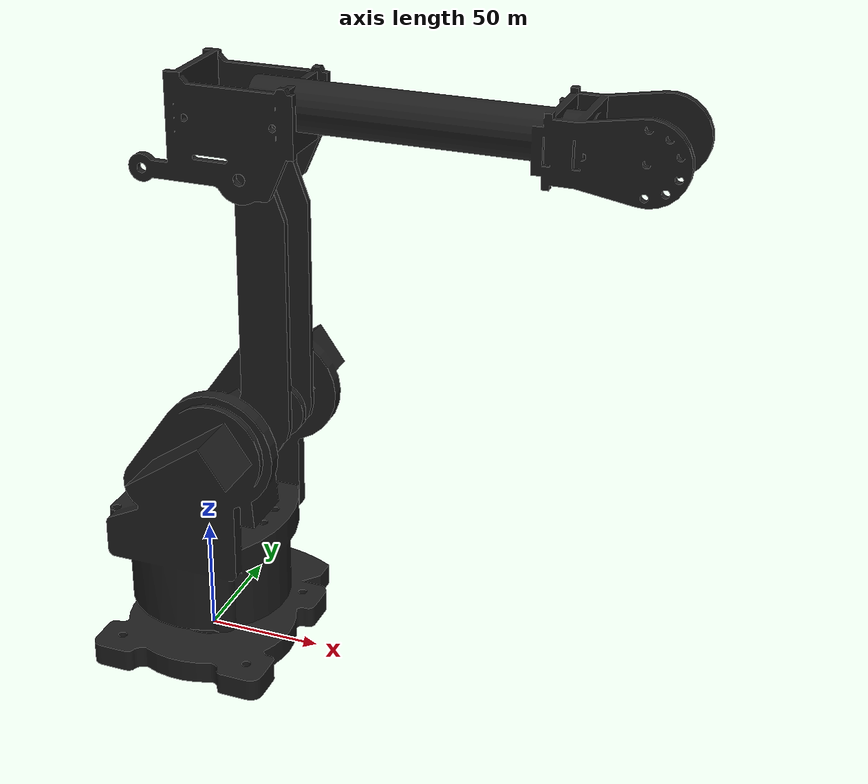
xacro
<?xml version="1.0"?>
<!--INCLUDES-->
<robot name="myrobot" xmlns:xacro="http://www.ros.org/wiki/xacro">
<xacro:include filename="$(find sainsmart_robot_description_pkg)/urdf/links_joints.xacro" />
<!--FIN DE INCLUDES-->

        <m_link_mesh name="base_link"
              origin_rpy="0 0 0" origin_xyz="0 0 0"
              mass="1000"
              ixx="0" ixy="0" ixz="0"
              iyy="0" iyz="0"
              izz="9.655"
              meshfile="package://sainsmart_robot_description_pkg/meshes/baserobot.dae"
              meshscale="1 1 1" />

        <m_joint name="base_link_link01" type="revolute"
           axis_xyz="0 0 1"
           origin_rpy="0 0 0" origin_xyz="0 0 0"
           parent="base_link" child="link_01"
           limit_e="1000" limit_l="-3.14" limit_u="3.14" limit_v="0.5" />

	<transmission name="trans_base_link_link01">
          <type>transmission_interface/SimpleTransmission</type>
      	  <joint name="base_link_link01">
             <hardwareInterface>PositionJointInterface</hardwareInterface>
      	  </joint>
          <actuator name="motor_base_link_link01">
	          <hardwareInterface>PositionJointInterface</hardwareInterface>
	          <mechanicalReduction>1</mechanicalReduction>
          </actuator>
	</transmission>

   	<m_link_mesh name="link_01"
              origin_rpy="0 0 0" origin_xyz="0 0 60"
              mass="157.633"
              ixx="13.235" ixy="0" ixz="0"
              iyy="13.235" iyz="0"
              izz="9.655"
              meshfile="package://sainsmart_robot_description_pkg/meshes/pieza1.dae"
              meshscale="1 1 1" />

	<m_joint name="base_link01__link02" type="revolute"
		 axis_xyz="0 1 0"
		 origin_rpy="0 1.31 0" origin_xyz="29 0 110"
		 parent="link_01" child="link_02"
		 limit_e="1000" limit_l="-3.14" limit_u="3.14" limit_v="0.5" />

	<transmission name="trans_base_link01_link02">
          <type>transmission_interface/SimpleTransmission</type>
      	  <joint name="base_link01__link02">
             <hardwareInterface>PositionJointInterface</hardwareInterface>
      	  </joint>
      	  <actuator name="motor_base_link01_link02">
	           <hardwareInterface>PositionJointInterface</hardwareInterface>
	           <mechanicalReduction>1</mechanicalReduction>
          </actuator>
	</transmission>

	<m_link_mesh name="link_02"
              origin_rpy="0 0 0" origin_xyz="0 0 0"
              mass="157.633"
              ixx="13.235" ixy="0" ixz="0"
              iyy="13.235" iyz="0"
              izz="9.655"
              meshfile="package://sainsmart_robot_description_pkg/meshes/pieza3.dae"
              meshscale="1 1 1" />

	<m_joint name="base_link01__link05" type="revolute"
		 axis_xyz="0 1 0"
		 origin_rpy="0 -1.31 0" origin_xyz="-106 -3 29"
		 parent="link_02" child="link_05"
		 limit_e="1000" limit_l="-3.14" limit_u="3.14" limit_v="0.5" />

	<transmission name="trans_base_link01_link05">
          <type>transmission_interface/SimpleTransmission</type>
      	  <joint name="base_link01__link05">
             <hardwareInterface>PositionJointInterface</hardwareInterface>
      	  </joint>
          <actuator name="motor_base_link01_link05">
	          <hardwareInterface>PositionJointInterface</hardwareInterface>
	          <mechanicalReduction>1</mechanicalReduction>
          </actuator>
	</transmission>

	<m_link_mesh name="link_05"
              origin_rpy="0 0 0" origin_xyz="0 0 0"
              mass="157.633"
              ixx="13.235" ixy="0" ixz="0"
              iyy="13.235" iyz="0"
              izz="9.655"
              meshfile="package://sainsmart_robot_description_pkg/meshes/pieza6.dae"
              meshscale="1 1 1" />

	<m_joint name="base_link05__link06" type="revolute"
		 axis_xyz="1 0 0"
		 origin_rpy="0 0 0" origin_xyz="0 0 26"
		 parent="link_05" child="link_06"
		 limit_e="1000" limit_l="-3.14" limit_u="3.14" limit_v="0.5" />

	<transmission name="trans_base_link05_link06">
          <type>transmission_interface/SimpleTransmission</type>
      	  <joint name="base_link05__link06">
             <hardwareInterface>PositionJointInterface</hardwareInterface>
      	  </joint>
          <actuator name="motor_base_link05_link06">
	           <hardwareInterface>PositionJointInterface</hardwareInterface>
	           <mechanicalReduction>1</mechanicalReduction>
           </actuator>
	</transmission>

	<m_link_mesh name="link_06"
              origin_rpy="0 0 3.14" origin_xyz="0 0 0"
              mass="157.633"
              ixx="13.235" ixy="0" ixz="0"
              iyy="13.235" iyz="0"
              izz="9.655"
              meshfile="package://sainsmart_robot_description_pkg/meshes/pieza6buena.dae"
              meshscale="1 1 1"/>

	 <!--ros_control plugin -->
	      <gazebo>
	            <plugin name="gazebo_ros_control" filename="libgazebo_ros_control.so">
                 <robotNamespace>/myrobot</robotNamespace>
              </plugin>
        </gazebo>

</robot>

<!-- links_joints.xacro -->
<robot xmlns:xacro="http://www.ros.org/wiki/xacro">

<!--MACRO DE ARTICULACIONES-->

  <xacro:macro name="m_joint" params="name type axis_xyz origin_rpy origin_xyz parent child limit_e limit_l limit_u limit_v">
    <joint name="${name}" type="${type}">
      <axis xyz="${axis_xyz}" />
      <limit effort="${limit_e}" lower="${limit_l}" upper="${limit_u}" velocity="${limit_v}" />
      <origin rpy="${origin_rpy}" xyz="${origin_xyz}" />
      <parent link="${parent}" />
      <child link="${child}" />
    </joint>
    <transmission name="trans_${name}">
      <type>transmission_interface/SimpleTransmission</type>
      <joint name="${name}">
        <hardwareInterface>hardware_interface/EffortJointInterface</hardwareInterface>
      </joint>
      <actuator name="motor_${name}">
        <hardwareInterface>hardware_interface/EffortJointInterface</hardwareInterface>
        <mechanicalReduction>1</mechanicalReduction>
      </actuator>
    </transmission>
  </xacro:macro>

<!--MACRO DE LOS BRAZOS DEL ROBOT BASADOS EN UN ARCHIVO MESH FILE CREADO CON AUTOCAD Y BLENDER-->

  <xacro:macro name="m_link_mesh" params="name origin_xyz origin_rpy meshfile meshscale mass ixx ixy ixz iyy iyz izz">
    <link name="${name}">
      <inertial>
        <mass value="${mass}" />
        <origin rpy="${origin_rpy}" xyz="${origin_xyz}" />
        <inertia ixx="${ixx}" ixy="${ixy}" ixz="${ixz}" iyy="${iyy}" iyz="${iyz}" izz="${izz}" />
      </inertial>
      <collision>
        <origin rpy="${origin_rpy}" xyz="${origin_xyz}" />
        <geometry>
          <mesh filename="${meshfile}" scale="${meshscale}"/>
        </geometry>
      </collision>
      <visual>
        <origin rpy="${origin_rpy}" xyz="${origin_xyz}" />
        <geometry>
          <mesh filename="${meshfile}" scale="${meshscale}"/>
        </geometry>
        <material name="light_black"/>
      </visual>
    </link>
  </xacro:macro>

</robot>
